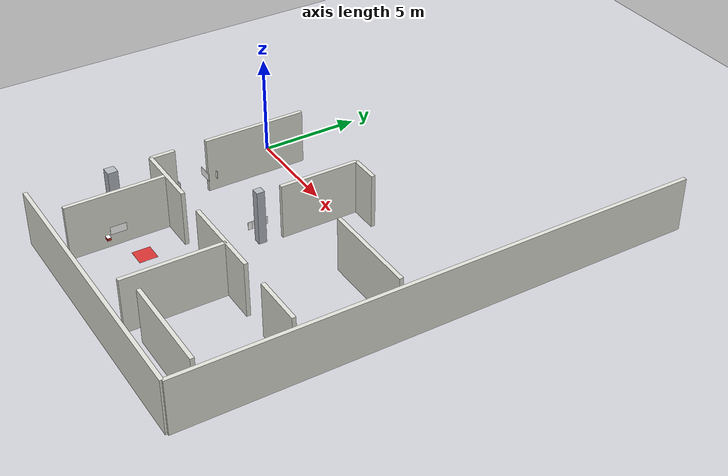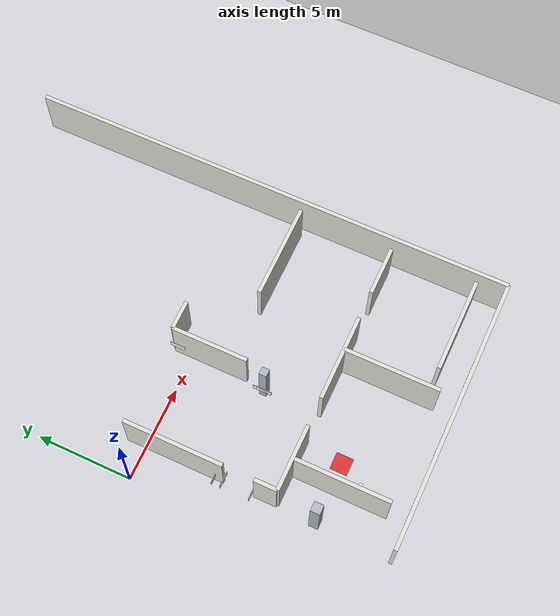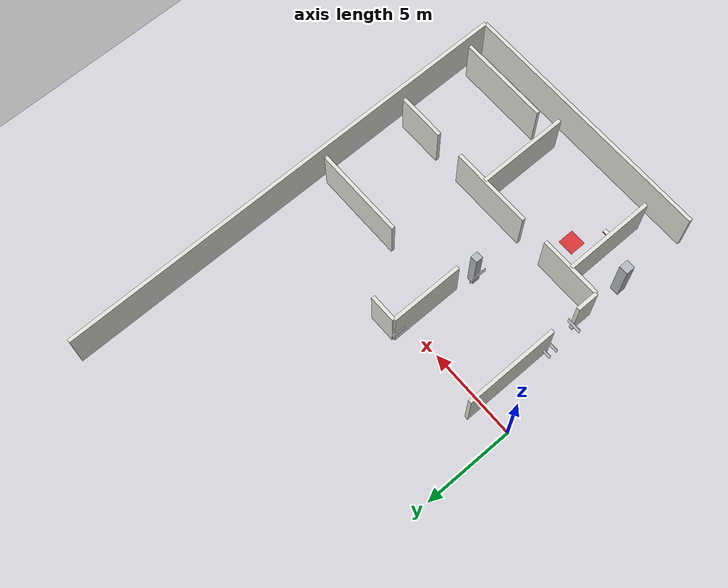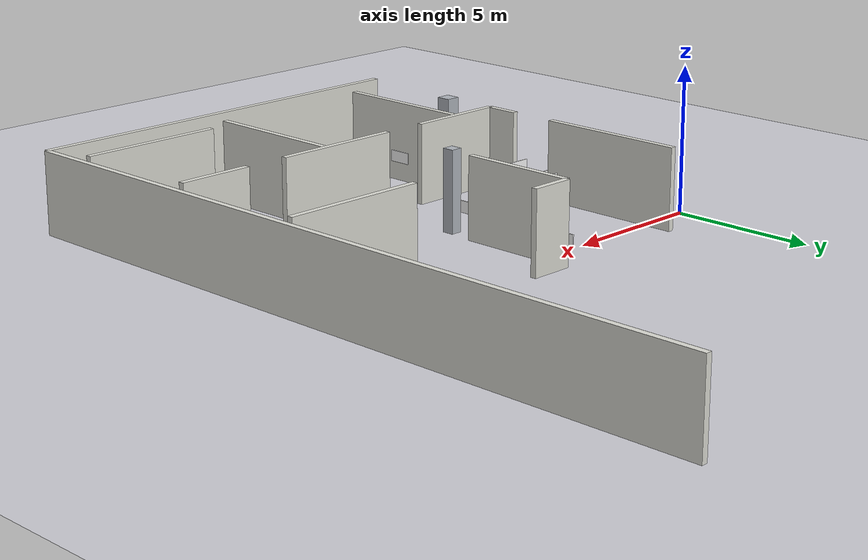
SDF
<sdf version="1.9">
 <world name="realistic_facility_world">
  <model name="ground_plane">
   <static>true</static>
   <link name="link">
    <collision name="collision">
     <geometry><plane><normal>0 0 1</normal><size>36 30</size></plane></geometry>
    </collision>
    <visual name="visual">
     <geometry><plane><normal>0 0 1</normal><size>36 30</size></plane></geometry>
     <material>
      <ambient>0.82 0.82 0.85 1</ambient>
      <diffuse>0.82 0.82 0.85 1</diffuse>
      <specular>0.15 0.15 0.15 1</specular>
     </material>
    </visual>
   </link>
  </model>
  <model name="wall_south_right">
   <static>true</static>
   <pose>8.750 -13.000 1.4 0 0 0</pose>
   <link name="link">
    <collision name="collision"><geometry><box><size>14.500 0.200 2.8</size></box></geometry></collision>
    <visual name="visual">
     <geometry><box><size>14.500 0.200 2.8</size></box></geometry>
     <material>
      <ambient>0.88 0.88 0.85 1</ambient>
      <diffuse>0.88 0.88 0.85 1</diffuse>
      <specular>0.1 0.1 0.1 1</specular>
     </material>
    </visual>
   </link>
  </model>
  <model name="wall_east">
   <static>true</static>
   <pose>16.000 0.000 1.4 0 0 0</pose>
   <link name="link">
    <collision name="collision"><geometry><box><size>0.200 26.000 2.8</size></box></geometry></collision>
    <visual name="visual">
     <geometry><box><size>0.200 26.000 2.8</size></box></geometry>
     <material>
      <ambient>0.88 0.88 0.85 1</ambient>
      <diffuse>0.88 0.88 0.85 1</diffuse>
      <specular>0.1 0.1 0.1 1</specular>
     </material>
    </visual>
   </link>
  </model>
  <model name="wall_rec_div_e1">
   <static>true</static>
   <pose>3.525 -7.000 1.4 0 0 0</pose>
   <link name="link">
    <collision name="collision"><geometry><box><size>3.450 0.200 2.8</size></box></geometry></collision>
    <visual name="visual">
     <geometry><box><size>3.450 0.200 2.8</size></box></geometry>
     <material>
      <ambient>0.88 0.88 0.85 1</ambient>
      <diffuse>0.88 0.88 0.85 1</diffuse>
      <specular>0.1 0.1 0.1 1</specular>
     </material>
    </visual>
   </link>
  </model>
  <model name="wall_rec_div_e2">
   <static>true</static>
   <pose>9.025 -7.000 1.4 0 0 0</pose>
   <link name="link">
    <collision name="collision"><geometry><box><size>4.550 0.200 2.8</size></box></geometry></collision>
    <visual name="visual">
     <geometry><box><size>4.550 0.200 2.8</size></box></geometry>
     <material>
      <ambient>0.88 0.88 0.85 1</ambient>
      <diffuse>0.88 0.88 0.85 1</diffuse>
      <specular>0.1 0.1 0.1 1</specular>
     </material>
    </visual>
   </link>
  </model>
  <model name="wall_spine_e_south">
   <static>true</static>
   <pose>1.800 -6.400 1.4 0 0 0</pose>
   <link name="link">
    <collision name="collision"><geometry><box><size>0.200 1.200 2.8</size></box></geometry></collision>
    <visual name="visual">
     <geometry><box><size>0.200 1.200 2.8</size></box></geometry>
     <material>
      <ambient>0.88 0.88 0.85 1</ambient>
      <diffuse>0.88 0.88 0.85 1</diffuse>
      <specular>0.1 0.1 0.1 1</specular>
     </material>
    </visual>
   </link>
  </model>
  <model name="wall_spine_e_mid">
   <static>true</static>
   <pose>1.800 -1.600 1.4 0 0 0</pose>
   <link name="link">
    <collision name="collision"><geometry><box><size>0.200 5.200 2.8</size></box></geometry></collision>
    <visual name="visual">
     <geometry><box><size>0.200 5.200 2.8</size></box></geometry>
     <material>
      <ambient>0.88 0.88 0.85 1</ambient>
      <diffuse>0.88 0.88 0.85 1</diffuse>
      <specular>0.1 0.1 0.1 1</specular>
     </material>
    </visual>
   </link>
  </model>
  <model name="wall_hosp_ward_w">
   <static>true</static>
   <pose>3.500 -9.500 1.4 0 0 0</pose>
   <link name="link">
    <collision name="collision"><geometry><box><size>0.200 5.000 2.8</size></box></geometry></collision>
    <visual name="visual">
     <geometry><box><size>0.200 5.000 2.8</size></box></geometry>
     <material>
      <ambient>0.88 0.88 0.85 1</ambient>
      <diffuse>0.88 0.88 0.85 1</diffuse>
      <specular>0.1 0.1 0.1 1</specular>
     </material>
    </visual>
   </link>
  </model>
  <model name="wall_hosp_ward_div">
   <static>true</static>
   <pose>9.500 -9.500 1.4 0 0 0</pose>
   <link name="link">
    <collision name="collision"><geometry><box><size>0.200 5.000 2.8</size></box></geometry></collision>
    <visual name="visual">
     <geometry><box><size>0.200 5.000 2.8</size></box></geometry>
     <material>
      <ambient>0.88 0.88 0.85 1</ambient>
      <diffuse>0.88 0.88 0.85 1</diffuse>
      <specular>0.1 0.1 0.1 1</specular>
     </material>
    </visual>
   </link>
  </model>
  <model name="wall_triage_n">
   <static>true</static>
   <pose>13.000 -2.000 1.4 0 0 0</pose>
   <link name="link">
    <collision name="collision"><geometry><box><size>5.000 0.200 2.8</size></box></geometry></collision>
    <visual name="visual">
     <geometry><box><size>5.000 0.200 2.8</size></box></geometry>
     <material>
      <ambient>0.88 0.88 0.85 1</ambient>
      <diffuse>0.88 0.88 0.85 1</diffuse>
      <specular>0.1 0.1 0.1 1</specular>
     </material>
    </visual>
   </link>
  </model>
  <model name="wall_hosp_alcove_n">
   <static>true</static>
   <pose>14.100 -7.000 1.4 0 0 0</pose>
   <link name="link">
    <collision name="collision"><geometry><box><size>2.600 0.200 2.8</size></box></geometry></collision>
    <visual name="visual">
     <geometry><box><size>2.600 0.200 2.8</size></box></geometry>
     <material>
      <ambient>0.88 0.88 0.85 1</ambient>
      <diffuse>0.88 0.88 0.85 1</diffuse>
      <specular>0.1 0.1 0.1 1</specular>
     </material>
    </visual>
   </link>
  </model>
  <model name="wall_hosp_alcove_s">
   <static>true</static>
   <pose>13.000 -11.500 1.4 0 0 0</pose>
   <link name="link">
    <collision name="collision"><geometry><box><size>5.000 0.200 2.8</size></box></geometry></collision>
    <visual name="visual">
     <geometry><box><size>5.000 0.200 2.8</size></box></geometry>
     <material>
      <ambient>0.88 0.88 0.85 1</ambient>
      <diffuse>0.88 0.88 0.85 1</diffuse>
      <specular>0.1 0.1 0.1 1</specular>
     </material>
    </visual>
   </link>
  </model>
  <model name="wall_cross_e">
   <static>true</static>
   <pose>7.750 1.000 1.4 0 0 0</pose>
   <link name="link">
    <collision name="collision"><geometry><box><size>1.500 0.200 2.8</size></box></geometry></collision>
    <visual name="visual">
     <geometry><box><size>1.500 0.200 2.8</size></box></geometry>
     <material>
      <ambient>0.88 0.88 0.85 1</ambient>
      <diffuse>0.88 0.88 0.85 1</diffuse>
      <specular>0.1 0.1 0.1 1</specular>
     </material>
    </visual>
   </link>
  </model>
  <model name="wall_wh_corridor_e">
   <static>true</static>
   <pose>7.000 -1.000 1.4 0 0 0</pose>
   <link name="link">
    <collision name="collision"><geometry><box><size>0.200 4.000 2.8</size></box></geometry></collision>
    <visual name="visual">
     <geometry><box><size>0.200 4.000 2.8</size></box></geometry>
     <material>
      <ambient>0.88 0.88 0.85 1</ambient>
      <diffuse>0.88 0.88 0.85 1</diffuse>
      <specular>0.1 0.1 0.1 1</specular>
     </material>
    </visual>
   </link>
  </model>
  <model name="pillar_rec_2">
   <static>true</static>
   <pose>1.800 -9.000 1.4 0 0 0</pose>
   <link name="link">
    <collision name="collision"><geometry><box><size>0.500 0.500 2.8</size></box></geometry></collision>
    <visual name="visual">
     <geometry><box><size>0.500 0.500 2.8</size></box></geometry>
     <material><ambient>0.7 0.72 0.75 1</ambient><diffuse>0.7 0.72 0.75 1</diffuse></material>
    </visual>
   </link>
  </model>
  <model name="pillar_j2">
   <static>true</static>
   <pose>6.800 -4.000 1.4 0 0 0</pose>
   <link name="link">
    <collision name="collision"><geometry><box><size>0.400 0.400 2.8</size></box></geometry></collision>
    <visual name="visual">
     <geometry><box><size>0.400 0.400 2.8</size></box></geometry>
     <material><ambient>0.7 0.72 0.75 1</ambient><diffuse>0.7 0.72 0.75 1</diffuse></material>
    </visual>
   </link>
  </model>
  <model name="sign_j1_hospital">
   <static>true</static>
   <pose>1.650 -4.250 0.850 0.0 0.0 3.1416</pose>
   <link name="link">
    <visual name="board_visual">
     <geometry><box><size>0.8 0.03 0.4</size></box></geometry>
     <material>
      <ambient>1.0 1.0 1.0 1.0</ambient>
      <diffuse>1.0 1.0 1.0 1.0</diffuse>
      <specular>0.2 0.2 0.2 1.0</specular>
      <emissive>0.08 0.08 0.08 1.0</emissive>
      <pbr>
       <metal>
        <albedo_map>/home/soham-darade/CV_Autonomous_Navigation/ros2_ws/src/autonomous_robot_gazebo/materials/textures/signs/hospital_right.png</albedo_map>
        <roughness>0.2</roughness>
        <metalness>0.0</metalness>
       </metal>
      </pbr>
     </material>
    </visual>
    <collision name="board_collision"><geometry><box><size>0.8 0.03 0.4</size></box></geometry></collision>
   </link>
  </model>
  <model name="sign_j1_office">
   <static>true</static>
   <pose>1.650 -3.800 0.850 0.0 0.0 3.1416</pose>
   <link name="link">
    <visual name="board_visual">
     <geometry><box><size>0.8 0.03 0.4</size></box></geometry>
     <material>
      <ambient>1.0 1.0 1.0 1.0</ambient>
      <diffuse>1.0 1.0 1.0 1.0</diffuse>
      <specular>0.2 0.2 0.2 1.0</specular>
      <emissive>0.08 0.08 0.08 1.0</emissive>
      <pbr>
       <metal>
        <albedo_map>/home/soham-darade/CV_Autonomous_Navigation/ros2_ws/src/autonomous_robot_gazebo/materials/textures/signs/office_straight.png</albedo_map>
        <roughness>0.2</roughness>
        <metalness>0.0</metalness>
       </metal>
      </pbr>
     </material>
    </visual>
    <collision name="board_collision"><geometry><box><size>0.8 0.03 0.4</size></box></geometry></collision>
   </link>
  </model>
  <model name="sign_j1_hospital_south">
   <static>true</static>
   <pose>1.650 -5.750 0.850 0.0 0.0 0.0000</pose>
   <link name="link">
    <visual name="board_visual">
     <geometry><box><size>0.8 0.03 0.4</size></box></geometry>
     <material>
      <ambient>1.0 1.0 1.0 1.0</ambient>
      <diffuse>1.0 1.0 1.0 1.0</diffuse>
      <specular>0.2 0.2 0.2 1.0</specular>
      <emissive>0.08 0.08 0.08 1.0</emissive>
      <pbr>
       <metal>
        <albedo_map>/home/soham-darade/CV_Autonomous_Navigation/ros2_ws/src/autonomous_robot_gazebo/materials/textures/signs/hospital_left.png</albedo_map>
        <roughness>0.2</roughness>
        <metalness>0.0</metalness>
       </metal>
      </pbr>
     </material>
    </visual>
    <collision name="board_collision"><geometry><box><size>0.8 0.03 0.4</size></box></geometry></collision>
   </link>
  </model>
  <model name="sign_j2_hospital">
   <static>true</static>
   <pose>6.550 -4.100 0.850 0.0 0.0 1.5708</pose>
   <link name="link">
    <visual name="board_visual">
     <geometry><box><size>0.8 0.03 0.4</size></box></geometry>
     <material>
      <ambient>1.0 1.0 1.0 1.0</ambient>
      <diffuse>1.0 1.0 1.0 1.0</diffuse>
      <specular>0.2 0.2 0.2 1.0</specular>
      <emissive>0.08 0.08 0.08 1.0</emissive>
      <pbr>
       <metal>
        <albedo_map>/home/soham-darade/CV_Autonomous_Navigation/ros2_ws/src/autonomous_robot_gazebo/materials/textures/signs/hospital_right.png</albedo_map>
        <roughness>0.2</roughness>
        <metalness>0.0</metalness>
       </metal>
      </pbr>
     </material>
    </visual>
    <collision name="board_collision"><geometry><box><size>0.8 0.03 0.4</size></box></geometry></collision>
   </link>
  </model>
  <model name="sign_j2_warehouse">
   <static>true</static>
   <pose>6.550 -3.900 0.850 0.0 0.0 1.5708</pose>
   <link name="link">
    <visual name="board_visual">
     <geometry><box><size>0.8 0.03 0.4</size></box></geometry>
     <material>
      <ambient>1.0 1.0 1.0 1.0</ambient>
      <diffuse>1.0 1.0 1.0 1.0</diffuse>
      <specular>0.2 0.2 0.2 1.0</specular>
      <emissive>0.08 0.08 0.08 1.0</emissive>
      <pbr>
       <metal>
        <albedo_map>/home/soham-darade/CV_Autonomous_Navigation/ros2_ws/src/autonomous_robot_gazebo/materials/textures/signs/warehouse_left.png</albedo_map>
        <roughness>0.2</roughness>
        <metalness>0.0</metalness>
       </metal>
      </pbr>
     </material>
    </visual>
    <collision name="board_collision"><geometry><box><size>0.8 0.03 0.4</size></box></geometry></collision>
   </link>
  </model>
  <model name="sign_j6_charging">
   <static>true</static>
   <pose>6.900 0.800 0.850 0.0 0.0 -1.5708</pose>
   <link name="link">
    <visual name="board_visual">
     <geometry><box><size>0.8 0.03 0.4</size></box></geometry>
     <material>
      <ambient>1.0 1.0 1.0 1.0</ambient>
      <diffuse>1.0 1.0 1.0 1.0</diffuse>
      <specular>0.2 0.2 0.2 1.0</specular>
      <emissive>0.08 0.08 0.08 1.0</emissive>
      <pbr>
       <metal>
        <albedo_map>/home/soham-darade/CV_Autonomous_Navigation/ros2_ws/src/autonomous_robot_gazebo/materials/textures/signs/charging_left.png</albedo_map>
        <roughness>0.2</roughness>
        <metalness>0.0</metalness>
       </metal>
      </pbr>
     </material>
    </visual>
    <collision name="board_collision"><geometry><box><size>0.8 0.03 0.4</size></box></geometry></collision>
   </link>
  </model>
  <model name="v3_sign_collection_point">
   <static>true</static>
   <pose>3.620 -9.600 0.850 0 0 -1.5708</pose>
   <link name="link">
    <collision name="collision"><geometry><box><size>0.8 0.03 0.4</size></box></geometry></collision>
    <visual name="visual">
     <geometry><box><size>0.8 0.03 0.4</size></box></geometry>
     <material>
      <diffuse>1 1 1 1</diffuse>
      <ambient>1 1 1 1</ambient>
      <pbr>
       <metal>
        <albedo_map>/home/soham-darade/CV_Autonomous_Navigation/V3/models/v3_markers/collection_point.png</albedo_map>
        <metalness>0</metalness>
        <roughness>0.8</roughness>
       </metal>
      </pbr>
     </material>
    </visual>
   </link>
  </model>
  <model name="v3_floor_collection_point">
   <static>true</static>
   <pose>5.000 -9.000 0.002 0 0 0</pose>
   <link name="link">
    <visual name="visual">
     <geometry><box><size>0.9 0.9 0.004</size></box></geometry>
     <material><ambient>0.85 0.2 0.2 1</ambient><diffuse>0.85 0.2 0.2 1</diffuse></material>
    </visual>
   </link>
  </model>
  <model name="v3_payload_blood_sample_carrier">
   <static>true</static>
   <pose>4.100 -10.300 0.870 0 0 0</pose>
   <link name="link">
    <collision name="collision"><geometry><box><size>0.26 0.18 0.14</size></box></geometry></collision>
    <visual name="body">
     <geometry><box><size>0.26 0.18 0.14</size></box></geometry>
     <material><ambient>0.85 0.1 0.1 1</ambient><diffuse>0.85 0.1 0.1 1</diffuse></material>
    </visual>
    <visual name="lid_band">
     <pose>0 0 0.072 0 0 0</pose>
     <geometry><box><size>0.27 0.19 0.02</size></box></geometry>
     <material><ambient>0.95 0.95 0.95 1</ambient><diffuse>0.95 0.95 0.95 1</diffuse></material>
    </visual>
   </link>
  </model>
 </world>
</sdf>
